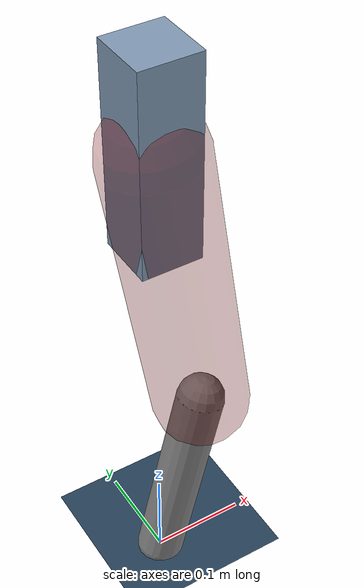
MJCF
<mujoco model="Hopper2D">
	<compiler inertiafromgeom="true" angle="radian" />
	<option timestep="0.001" integrator="implicit" cone="elliptic" solver="Newton" tolerance="1e-10" />

	<default>
		<geom contype="1" conaffinity="1" condim="3" friction="2 0.005 0.0001" solref="0.005 1" />
		<joint limited="true" damping="0.1" />
	</default>

	<asset>
		<texture name="skybox" type="skybox" builtin="gradient" rgb1=".4 .6 .8" rgb2="0 0 0" width="800" height="800" />
		<texture name="grid" type="2d" builtin="checker" rgb1=".1 .2 .3" rgb2=".2 .3 .4" width="300" height="300" mark="edge" markrgb=".2 .3 .4" />
		<material name="ground" texture="grid" texrepeat="1 1" texuniform="true" reflectance="0.1" />
		<material name="leg" rgba="0.5 0.6 0.7 1" />
	</asset>

	<worldbody>

		<geom name="floor" type="plane" size="5 5 0.25" material="ground" />

		<light directional="false" diffuse="0.8 0.8 0.8" specular="0.3 0.3 0.3" pos="0 0 2" dir="0 0 -1" />
		<light mode="targetbodycom" target="base" directional="false" diffuse="0.8 0.8 0.8" specular="0.3 0.3 0.3" pos="0 0 2" dir="0 0 -1" />

		<camera name="fixed" pos="0 -2 1" xyaxes="1 0 0 0 0 1" />
		<camera name="tracking" mode="trackcom" pos="0 -3 1" />

		<body name="root" pos="0 0 0.5183265527103385">
			<joint name="slide_x" type="slide" axis="1 0 0" range="-100 100" />
			<joint name="slide_z" type="slide" axis="0 0 1" range="0 10" />

			<body name="base" pos="0 0 0">
				<geom name="torso" type="box" size="0.03 0.03 0.1" mass="2.529" material="leg" />

				<body name="link1" pos="0 0 0" euler="0 1.4114208111019475 0">
					<joint type="hinge" axis="0 -1 0" pos="0 0 0" name="hinge1" limited="true" range="-3.14 3.14" stiffness="0" damping="0.1" />
					<geom name="thigh" type="capsule" fromto="0 0 0 0.3158473893984719 0 0" size="0.05" rgba="0.5 0 0 0.3" mass="1.0318726903157214" />

					<body name="link2" pos="0.3158473893984719 0 0" euler="0 0.3975282193089095 0">
						<joint type="hinge" axis="0 -1 0" pos="0 0 0" name="hinge2" limited="true" range="-3.14 3.14" stiffness="0" damping="0.1" />
						<geom name="shank" type="capsule" fromto="0 0 0 0.21247916331186653 0 0" size="0.025" mass="0.41138333064949323" />

					</body>
				</body>
			</body>
		</body>
	</worldbody>

	<actuator>
		<motor name="torque1" joint="hinge1" ctrlrange="-78.82723846635791 78.82723846635791" ctrllimited="true" gear="1" />
		<motor name="torque2" joint="hinge2" ctrlrange="-96.23500337394486 96.23500337394486" ctrllimited="true" gear="1" />
	</actuator>
</mujoco>
